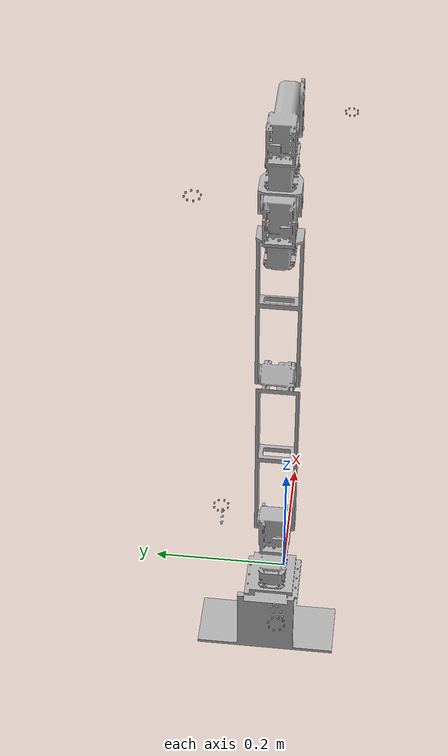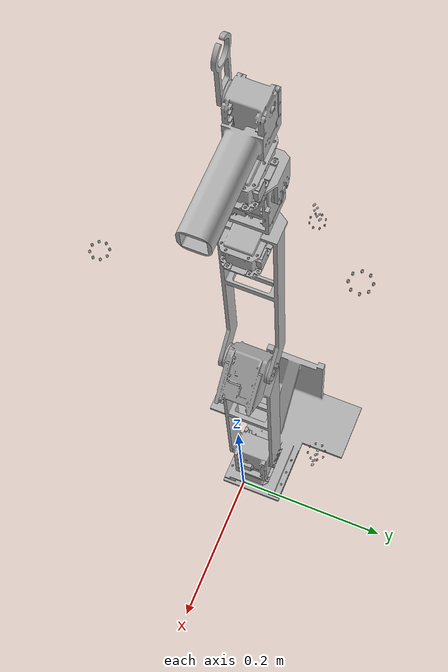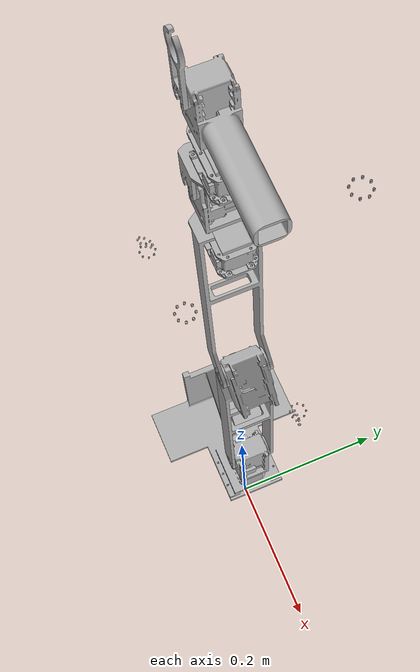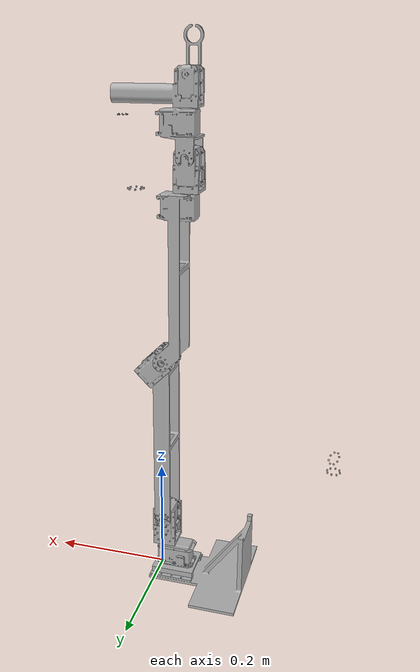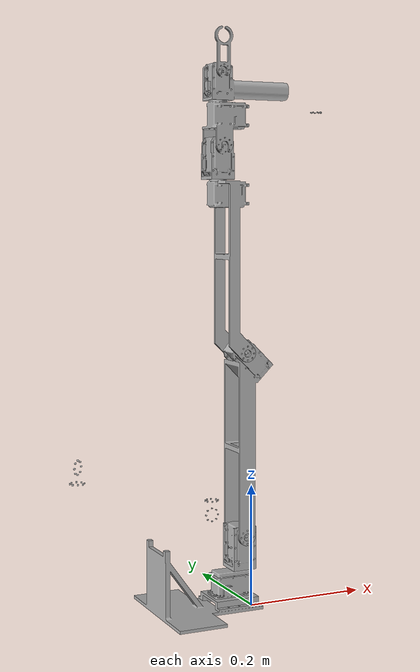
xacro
<?xml version="1.0" ?>
<robot name="leaderarm" xmlns:xacro="http://www.ros.org/wiki/xacro">

<xacro:include filename="$(find leaderarm_description)/urdf/materials.xacro" />
<xacro:include filename="$(find leaderarm_description)/urdf/leaderarm.trans" />
<xacro:include filename="$(find leaderarm_description)/urdf/leaderarm.gazebo" />
<link name="leader_base_link">
  <inertial>
    <origin xyz="-0.065404 -1e-6 -0.032733" rpy="0 0 0"/>
    <mass value="0.376"/>
    <inertia ixx="0.000629062" iyy="0.001478624" izz="0.001603261" ixy="0.00000003" iyz="0.0" ixz="0.000062369"/>
  </inertial>
  <visual>
    <origin xyz="0 0 0" rpy="0 0 0"/>
    <geometry>
      <mesh filename="file://$(find leaderarm_description)/meshes/base_link.stl" scale="0.001 0.001 0.001"/>
    </geometry>
    <material name="silver"/>
  </visual>
  <collision>
    <origin xyz="0 0 0" rpy="0 0 0"/>
    <geometry>
      <mesh filename="file://$(find leaderarm_description)/meshes/base_link.stl" scale="0.001 0.001 0.001"/>
    </geometry>
  </collision>
</link>

<link name="link_1_leader_1">
  <inertial>
    <origin xyz="-3e-6 -0.00233 0.04133" rpy="0 0 0"/>
    <mass value="0.17"/>
    <inertia ixx="0.000098604" iyy="0.000076082" izz="0.000052417" ixy="-0.000000002" iyz="0.000005468" ixz="0.000000002"/>
  </inertial>
  <visual>
    <origin xyz="0.0145 -0.0145 -0.062" rpy="0 0 0"/>
    <geometry>
      <mesh filename="file://$(find leaderarm_description)/meshes/link_1_leader_1.stl" scale="0.001 0.001 0.001"/>
    </geometry>
    <material name="silver"/>
  </visual>
  <collision>
    <origin xyz="0.0145 -0.0145 -0.062" rpy="0 0 0"/>
    <geometry>
      <mesh filename="file://$(find leaderarm_description)/meshes/link_1_leader_1.stl" scale="0.001 0.001 0.001"/>
    </geometry>
  </collision>
</link>

<link name="link_2_leader_1">
  <inertial>
    <origin xyz="0.006170139685252395 -0.02601295404428107 0.22578322371838686" rpy="0 0 0"/>
    <mass value="0.243"/>
    <inertia ixx="0.000132033" iyy="0.001728174" izz="0.001780092" ixy="-0.000022274" iyz="-0.00000197" ixz="0.000053989"/>
  </inertial>
  <visual>
    <origin xyz="0.0145 -0.0405 -0.1187" rpy="0 0 0"/>
    <geometry>
      <mesh filename="file://$(find leaderarm_description)/meshes/link_2_leader_1.stl" scale="0.001 0.001 0.001"/>
    </geometry>
    <material name="silver"/>
  </visual>
  <collision>
    <origin xyz="0.0145 -0.0405 -0.1187" rpy="0 0 0"/>
    <geometry>
      <mesh filename="file://$(find leaderarm_description)/meshes/link_2_leader_1.stl" scale="0.001 0.001 0.001"/>
    </geometry>
  </collision>
</link>

<link name="link_3_leader_1">
  <inertial>
    <origin xyz="-0.022649618224804397 -0.02632781126242719 0.20370279316133927" rpy="0 0 0"/>
    <mass value="0.18"/>
    <inertia ixx="0.000088026" iyy="0.001017084" izz="0.001030333" ixy="0.000000917" iyz="0.000000019" ixz="-0.000033228"/>
  </inertial>
  <visual>
    <origin xyz="0.014504 -0.04049 -0.4187" rpy="0 0 0"/>
    <geometry>
      <mesh filename="file://$(find leaderarm_description)/meshes/link_3_leader_1.stl" scale="0.001 0.001 0.001"/>
    </geometry>
    <material name="silver"/>
  </visual>
  <collision>
    <origin xyz="0.014504 -0.04049 -0.4187" rpy="0 0 0"/>
    <geometry>
      <mesh filename="file://$(find leaderarm_description)/meshes/link_3_leader_1.stl" scale="0.001 0.001 0.001"/>
    </geometry>
  </collision>
</link>

<link name="link_4_leader_1">
  <inertial>
    <origin xyz="-4.428783816068371e-08 4.482316147522841e-05 0.0345218801269237" rpy="0 0 0"/>
    <mass value="0.137"/>
    <inertia ixx="0.00003736" iyy="0.000056561" izz="0.000069854" ixy="0.000002817" iyz="0.0" ixz="0.0"/>
  </inertial>
  <visual>
    <origin xyz="0.053506 -0.01407 -0.6952" rpy="0 0 0"/>
    <geometry>
      <mesh filename="file://$(find leaderarm_description)/meshes/link_4_leader_1.stl" scale="0.001 0.001 0.001"/>
    </geometry>
    <material name="silver"/>
  </visual>
  <collision>
    <origin xyz="0.053506 -0.01407 -0.6952" rpy="0 0 0"/>
    <geometry>
      <mesh filename="file://$(find leaderarm_description)/meshes/link_4_leader_1.stl" scale="0.001 0.001 0.001"/>
    </geometry>
  </collision>
</link>

<link name="link_5_leader_1">
  <inertial>
    <origin xyz="0.013413342124703492 -0.023509999952198074 0.044037664688921896" rpy="0 0 0"/>
    <mass value="0.136"/>
    <inertia ixx="0.00005204" iyy="0.000064468" izz="0.000044163" ixy="0.0" iyz="0.0" ixz="0.000002644"/>
  </inertial>
  <visual>
    <origin xyz="0.053506 -0.03767 -0.7485" rpy="0 0 0"/>
    <geometry>
      <mesh filename="file://$(find leaderarm_description)/meshes/link_5_leader_1.stl" scale="0.001 0.001 0.001"/>
    </geometry>
    <material name="silver"/>
  </visual>
  <collision>
    <origin xyz="0.053506 -0.03767 -0.7485" rpy="0 0 0"/>
    <geometry>
      <mesh filename="file://$(find leaderarm_description)/meshes/link_5_leader_1.stl" scale="0.001 0.001 0.001"/>
    </geometry>
  </collision>
</link>

<link name="gripper_leader_1">
  <inertial>
    <origin xyz="0.023147156750400244 -0.00016595901113067128 0.0260309860403779" rpy="0 0 0"/>
    <mass value="0.111"/>
    <inertia ixx="0.000143565" iyy="0.000155061" izz="0.00004208" ixy="0.000003559" iyz="0.000003474" ixz="-0.000021804"/>
  </inertial>
  <visual>
    <origin xyz="0.053507 -0.01416 -0.819" rpy="0 0 0"/>
    <geometry>
      <mesh filename="file://$(find leaderarm_description)/meshes/gripper_leader_1.stl" scale="0.001 0.001 0.001"/>
    </geometry>
    <material name="silver"/>
  </visual>
  <collision>
    <origin xyz="0.053507 -0.01416 -0.819" rpy="0 0 0"/>
    <geometry>
      <mesh filename="file://$(find leaderarm_description)/meshes/gripper_leader_1.stl" scale="0.001 0.001 0.001"/>
    </geometry>
  </collision>
</link>

<link name="trigger_leader_1">
  <inertial>
    <origin xyz="-7.730948616696542e-08 -0.0019999999999198263 0.027783233717970868" rpy="0 0 0"/>
    <mass value="0.003"/>
    <inertia ixx="0.00000153" iyy="0.000001901" izz="0.000000381" ixy="0.0" iyz="-0.0" ixz="0.000000379"/>
  </inertial>
  <visual>
    <origin xyz="0.053508 0.00659 -0.8646" rpy="0 0 0"/>
    <geometry>
      <mesh filename="file://$(find leaderarm_description)/meshes/trigger_leader_1.stl" scale="0.001 0.001 0.001"/>
    </geometry>
    <material name="silver"/>
  </visual>
  <collision>
    <origin xyz="0.053508 0.00659 -0.8646" rpy="0 0 0"/>
    <geometry>
      <mesh filename="file://$(find leaderarm_description)/meshes/trigger_leader_1.stl" scale="0.001 0.001 0.001"/>
    </geometry>
  </collision>
</link>

<joint name="leader_rotation1" type="revolute">
  <origin xyz="-0.0145 0.0145 0.062" rpy="0 0 0"/>
  <parent link="leader_base_link"/>
  <child link="link_1_leader_1"/>
  <axis xyz="-0.0 0.0 1.0"/>
  <limit upper="1.570796" lower="-1.570796" effort="100" velocity="100"/>
</joint>

<joint name="leader_rotation2" type="revolute">
  <origin xyz="0.0 0.026 0.0567" rpy="0 0 0"/>
  <parent link="link_1_leader_1"/>
  <child link="link_2_leader_1"/>
  <axis xyz="0.0 1.0 -0.0"/>
  <limit upper="1.570796" lower="-1.570796" effort="100" velocity="100"/>
</joint>

<joint name="leader_rotation3" type="revolute">
  <origin xyz="-4e-06 -1e-05 0.3" rpy="0 0 0"/>
  <parent link="link_2_leader_1"/>
  <child link="link_3_leader_1"/>
  <axis xyz="-0.0 1.0 -0.0"/>
  <limit upper="3.141593" lower="0.0" effort="100" velocity="100"/>
</joint>

<joint name="leader_rotation4" type="revolute">
  <origin xyz="-0.039002 -0.02642 0.2765" rpy="0 0 0"/>
  <parent link="link_3_leader_1"/>
  <child link="link_4_leader_1"/>
  <axis xyz="-1.2e-05 0.0 1.0"/>
  <limit upper="1.570796" lower="-1.570796" effort="100" velocity="100"/>
</joint>

<joint name="leader_rotation5" type="revolute">
  <origin xyz="0.0 0.0236 0.0533" rpy="0 0 0"/>
  <parent link="link_4_leader_1"/>
  <child link="link_5_leader_1"/>
  <axis xyz="0.0 1.0 -0.0"/>
  <limit upper="1.570796" lower="-1.570796" effort="100" velocity="100"/>
</joint>

<joint name="leader_rotation6" type="revolute">
  <origin xyz="-1e-06 -0.02351 0.0705" rpy="0 0 0"/>
  <parent link="link_5_leader_1"/>
  <child link="gripper_leader_1"/>
  <axis xyz="-1.2e-05 0.0 1.0"/>
  <limit upper="1.570796" lower="-1.570796" effort="100" velocity="100"/>
</joint>

<joint name="leader_rotation7" type="revolute">
  <origin xyz="-1e-06 -0.02075 0.0456" rpy="0 0 0"/>
  <parent link="gripper_leader_1"/>
  <child link="trigger_leader_1"/>
  <axis xyz="0.0 -1.0 0.0"/>
  <limit upper="0.0" lower="-1.570796" effort="100" velocity="100"/>
</joint>

<ros2_control name="LeaderHardware" type="system">
    <hardware>
      <plugin>dynamixel_hardware_interface/DynamixelHardware</plugin>
      <param name="port_name">/dev/USBleader</param>
      <param name="baud_rate">1000000</param>
      <param name="dynamixel_model_folder">/param/dxl_model/</param>
      <param name="number_of_joints">7</param>
      <param name="number_of_transmissions">7</param>
      <param name="loop_rate">100</param>
      <param name="use_fast_read">false</param>            <param name="use_indirect_address">true</param>
      <param name="error_timeout_ms">4000</param>
      <param name="disable_torque_at_init">false</param>
      <param name="torque_enable">true</param>
    </hardware>

    <joint name="leader_rotation1"><param name="id">1</param><param name="torque_enable">true</param><command_interface name="position"/><command_interface name="effort"/><state_interface name="position"/><state_interface name="velocity"/><state_interface name="effort"/></joint>
    <joint name="leader_rotation2"><param name="id">2</param><param name="torque_enable">true</param><command_interface name="position"/><command_interface name="effort"/><state_interface name="position"/><state_interface name="velocity"/><state_interface name="effort"/></joint>
    <joint name="leader_rotation3"><param name="id">3</param><param name="torque_enable">true</param><command_interface name="position"/><command_interface name="effort"/><state_interface name="position"/><state_interface name="velocity"/><state_interface name="effort"/></joint>
    <joint name="leader_rotation4"><param name="id">4</param><param name="torque_enable">true</param><command_interface name="position"/><command_interface name="effort"/><state_interface name="position"/><state_interface name="velocity"/><state_interface name="effort"/></joint>
    <joint name="leader_rotation5"><param name="id">5</param><param name="torque_enable">true</param><command_interface name="position"/><command_interface name="effort"/><state_interface name="position"/><state_interface name="velocity"/><state_interface name="effort"/></joint>
    <joint name="leader_rotation6"><param name="id">6</param><param name="torque_enable">true</param><command_interface name="position"/><command_interface name="effort"/><state_interface name="position"/><state_interface name="velocity"/><state_interface name="effort"/></joint>
    <joint name="leader_rotation7"><param name="id">7</param><param name="torque_enable">true</param><command_interface name="position"/><command_interface name="effort"/><state_interface name="position"/><state_interface name="velocity"/><state_interface name="effort"/></joint>

    <gpio name="dxl1">
      <param name="type">dxl</param><param name="ID">1</param>
      <param name="Operating Mode">0</param>
      <param name="Return Delay Time">10</param>
      <param name="Torque Enable">1</param>
      <command_interface name="Goal Current"/><state_interface name="Present Position"/>
    </gpio>
    <gpio name="dxl2">
      <param name="type">dxl</param><param name="ID">2</param>
      <param name="Operating Mode">0</param>
      <param name="Return Delay Time">10</param>
      <param name="Torque Enable">1</param>
      <command_interface name="Goal Current"/><state_interface name="Present Position"/>
    </gpio>
    <gpio name="dxl3">
      <param name="type">dxl</param><param name="ID">3</param>
      <param name="Operating Mode">0</param>
      <param name="Return Delay Time">10</param>
      <param name="Torque Enable">1</param>
      <command_interface name="Goal Current"/><state_interface name="Present Position"/>
    </gpio>
    <gpio name="dxl4">
      <param name="type">dxl</param><param name="ID">4</param>
      <param name="Operating Mode">0</param>
      <param name="Return Delay Time">10</param>
      <param name="Torque Enable">1</param>
      <command_interface name="Goal Current"/><state_interface name="Present Position"/>
    </gpio>
    <gpio name="dxl5">
      <param name="type">dxl</param><param name="ID">5</param>
      <param name="Operating Mode">0</param>
      <param name="Return Delay Time">10</param>
      <param name="Torque Enable">1</param>
      <command_interface name="Goal Current"/><state_interface name="Present Position"/>
    </gpio>
    <gpio name="dxl6">
      <param name="type">dxl</param><param name="ID">6</param>
      <param name="Operating Mode">0</param>
      <param name="Return Delay Time">10</param>
      <param name="Torque Enable">1</param>
      <command_interface name="Goal Current"/><state_interface name="Present Position"/>
    </gpio>
    <gpio name="dxl7">
      <param name="type">dxl</param><param name="ID">7</param>
      <param name="Operating Mode">16</param>
      <param name="Return Delay Time">10</param>
      <param name="Torque Enable">1</param>
      <command_interface name="Goal PWM"/><state_interface name="Present Position"/>
    </gpio>
  </ros2_control>

</robot>

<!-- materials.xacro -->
<robot name="leaderarm" xmlns:xacro="http://www.ros.org/wiki/xacro" >

<material name="silver">
  <color rgba="0.700 0.700 0.700 1.000"/>
</material>

</robot>

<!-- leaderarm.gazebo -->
<robot name="leaderarm" xmlns:xacro="http://www.ros.org/wiki/xacro" >

<xacro:property name="body_color" value="Gazebo/Silver" />

<gazebo>
  <plugin name="control" filename="libgazebo_ros_control.so"/>
</gazebo>
<gazebo reference="base_link">
  <material>${body_color}</material>
  <mu1>0.2</mu1>
  <mu2>0.2</mu2>
  <self_collide>true</self_collide>
  <gravity>true</gravity>
</gazebo>

<gazebo reference="link_1_leader_1">
  <material>${body_color}</material>
  <mu1>0.2</mu1>
  <mu2>0.2</mu2>
  <self_collide>true</self_collide>
</gazebo>

<gazebo reference="link_2_leader_1">
  <material>${body_color}</material>
  <mu1>0.2</mu1>
  <mu2>0.2</mu2>
  <self_collide>true</self_collide>
</gazebo>

<gazebo reference="link_3_leader_1">
  <material>${body_color}</material>
  <mu1>0.2</mu1>
  <mu2>0.2</mu2>
  <self_collide>true</self_collide>
</gazebo>

<gazebo reference="link_4_leader_1">
  <material>${body_color}</material>
  <mu1>0.2</mu1>
  <mu2>0.2</mu2>
  <self_collide>true</self_collide>
</gazebo>

<gazebo reference="link_5_leader_1">
  <material>${body_color}</material>
  <mu1>0.2</mu1>
  <mu2>0.2</mu2>
  <self_collide>true</self_collide>
</gazebo>

<gazebo reference="gripper_leader_1">
  <material>${body_color}</material>
  <mu1>0.2</mu1>
  <mu2>0.2</mu2>
  <self_collide>true</self_collide>
</gazebo>

<gazebo reference="trigger_leader_1">
  <material>${body_color}</material>
  <mu1>0.2</mu1>
  <mu2>0.2</mu2>
  <self_collide>true</self_collide>
</gazebo>

</robot>
